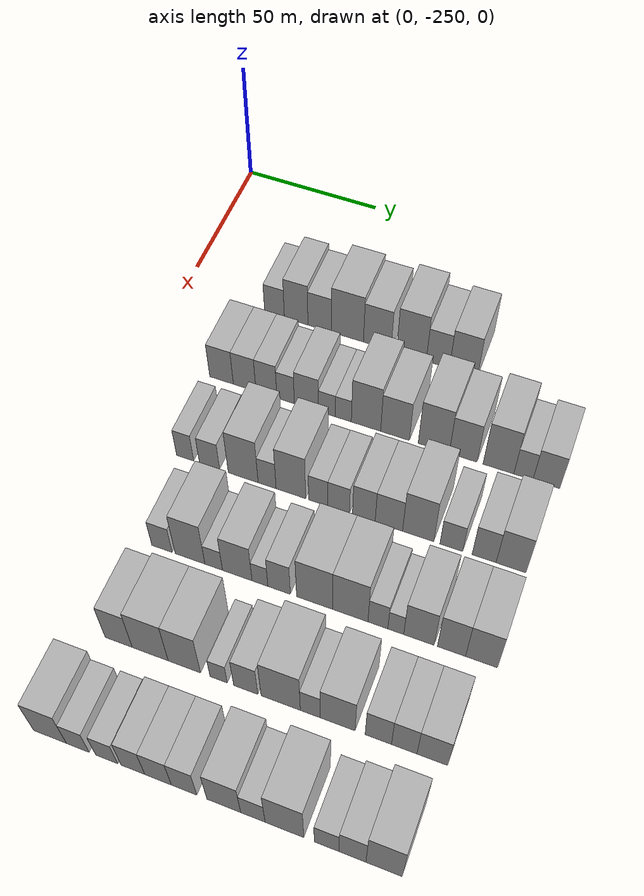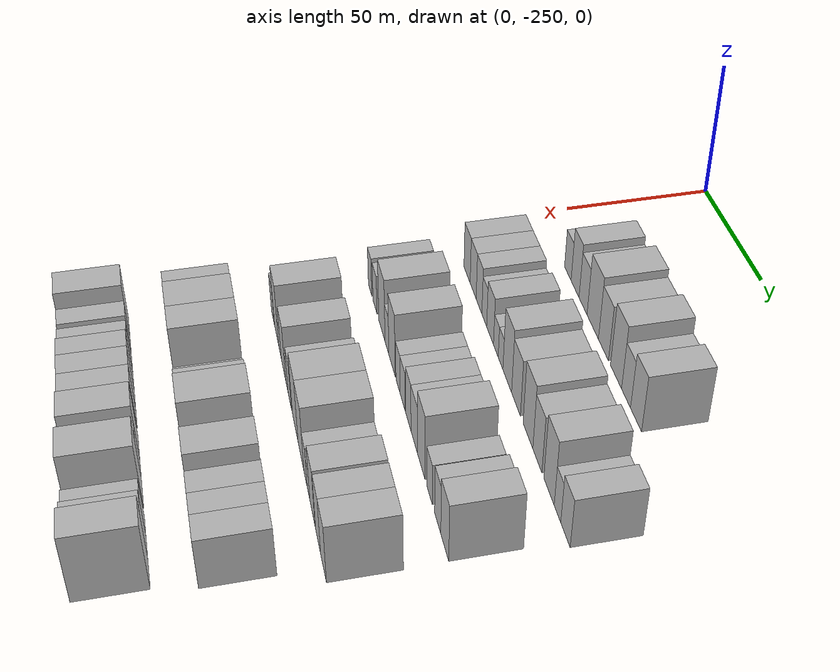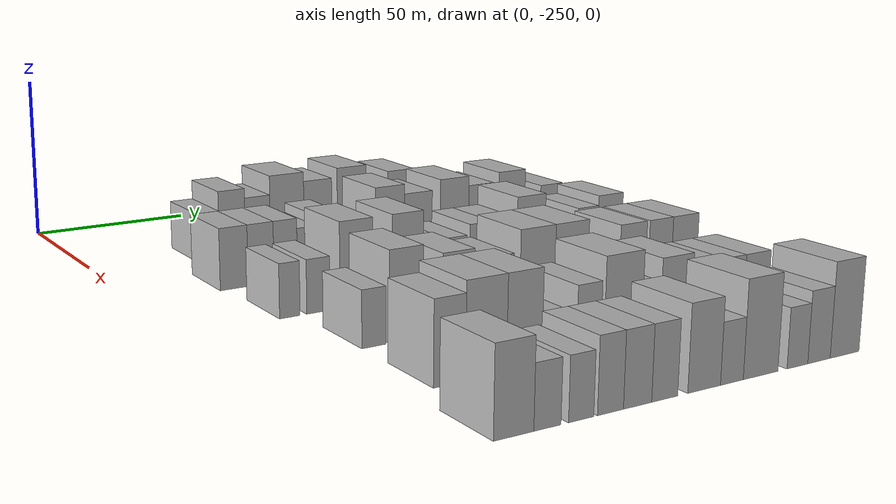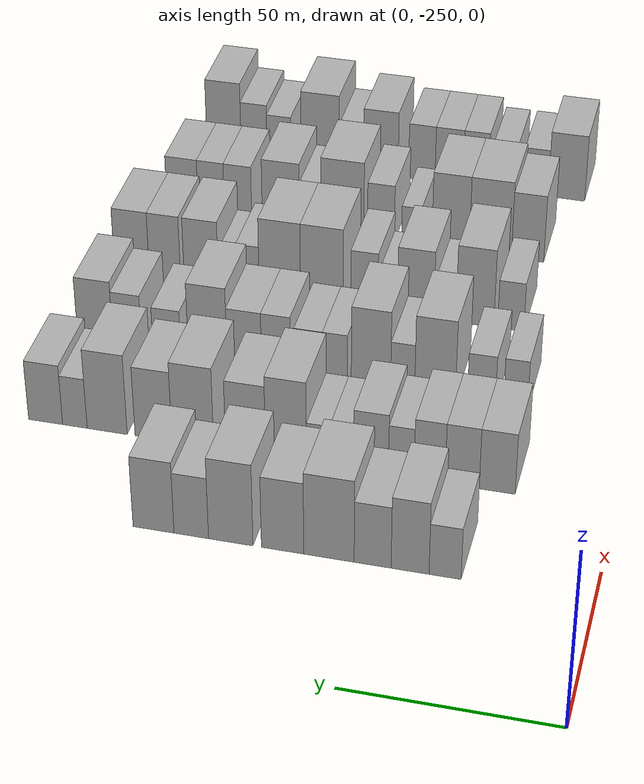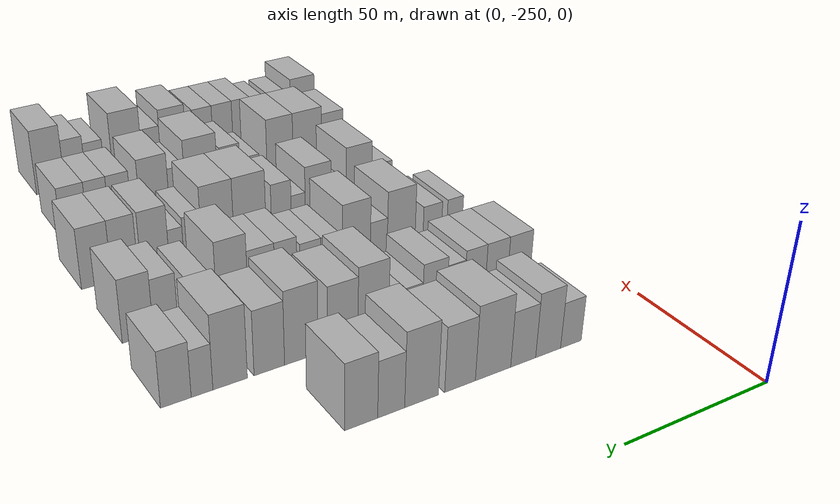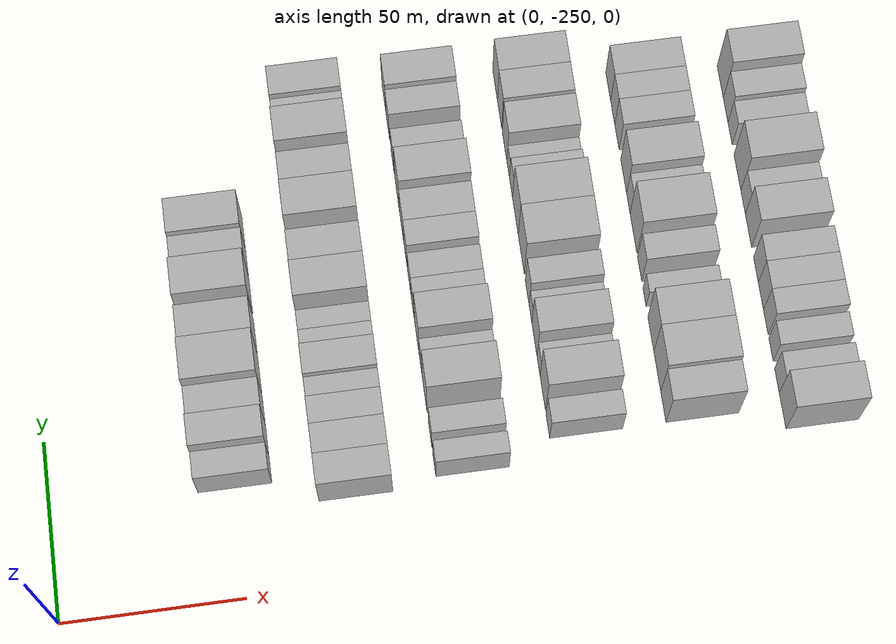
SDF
<sdf version="1.6">
 <world name="default">
  <model name="building_38">
   <static>1</static>
   <pose>50.0000 -215.8439 0 0.000000 0.000000 0.000000</pose>
   <link name="link">
    <pose>0 0 7.50 0 0 0</pose>
    <collision name="collision"><geometry><box><size>20.0000 7.4155 15.0000</size></box></geometry></collision>
    <visual name="visual">
     <cast_shadows>0</cast_shadows>
     <geometry><box><size>20.0000 7.4155 15.0000</size></box></geometry>
     <material>
      <script>
       <uri>model://HANNAS_wall/materials/scripts</uri>
       <uri>model://HANNAS_wall/materials/textures</uri>
       <name>vrc/HANNAS_wall</name>
      </script>
     </material>
    </visual>
   </link>
  </model>
  <model name="building_39">
   <static>1</static>
   <pose>50.0000 -207.7490 0 0.000000 0.000000 0.000000</pose>
   <link name="link">
    <pose>0 0 10.50 0 0 0</pose>
    <collision name="collision"><geometry><box><size>20.0000 8.7743 21.0000</size></box></geometry></collision>
    <visual name="visual">
     <cast_shadows>0</cast_shadows>
     <geometry><box><size>20.0000 8.7743 21.0000</size></box></geometry>
     <material>
      <script>
       <uri>model://HANNAS_wall/materials/scripts</uri>
       <uri>model://HANNAS_wall/materials/textures</uri>
       <name>vrc/HANNAS_wall</name>
      </script>
     </material>
    </visual>
   </link>
  </model>
  <model name="building_40">
   <static>1</static>
   <pose>50.0000 -199.0678 0 0.000000 0.000000 0.000000</pose>
   <link name="link">
    <pose>0 0 9.00 0 0 0</pose>
    <collision name="collision"><geometry><box><size>20.0000 8.5880 18.0000</size></box></geometry></collision>
    <visual name="visual">
     <cast_shadows>0</cast_shadows>
     <geometry><box><size>20.0000 8.5880 18.0000</size></box></geometry>
     <material>
      <script>
       <uri>model://HANNAS_wall/materials/scripts</uri>
       <uri>model://HANNAS_wall/materials/textures</uri>
       <name>vrc/HANNAS_wall</name>
      </script>
     </material>
    </visual>
   </link>
  </model>
  <model name="building_41">
   <static>1</static>
   <pose>50.0000 -188.8632 0 0.000000 0.000000 0.000000</pose>
   <link name="link">
    <pose>0 0 12.00 0 0 0</pose>
    <collision name="collision"><geometry><box><size>20.0000 11.8213 24.0000</size></box></geometry></collision>
    <visual name="visual">
     <cast_shadows>0</cast_shadows>
     <geometry><box><size>20.0000 11.8213 24.0000</size></box></geometry>
     <material>
      <script>
       <uri>model://HANNAS_wall/materials/scripts</uri>
       <uri>model://HANNAS_wall/materials/textures</uri>
       <name>vrc/HANNAS_wall</name>
      </script>
     </material>
    </visual>
   </link>
  </model>
  <model name="building_42">
   <static>1</static>
   <pose>50.0000 -177.9492 0 0.000000 0.000000 0.000000</pose>
   <link name="link">
    <pose>0 0 10.50 0 0 0</pose>
    <collision name="collision"><geometry><box><size>20.0000 10.0065 21.0000</size></box></geometry></collision>
    <visual name="visual">
     <cast_shadows>0</cast_shadows>
     <geometry><box><size>20.0000 10.0065 21.0000</size></box></geometry>
     <material>
      <script>
       <uri>model://HANNAS_wall/materials/scripts</uri>
       <uri>model://HANNAS_wall/materials/textures</uri>
       <name>vrc/HANNAS_wall</name>
      </script>
     </material>
    </visual>
   </link>
  </model>
  <model name="building_43">
   <static>1</static>
   <pose>50.0000 -165.6453 0 0.000000 0.000000 0.000000</pose>
   <link name="link">
    <pose>0 0 12.00 0 0 0</pose>
    <collision name="collision"><geometry><box><size>20.0000 10.6014 24.0000</size></box></geometry></collision>
    <visual name="visual">
     <cast_shadows>0</cast_shadows>
     <geometry><box><size>20.0000 10.6014 24.0000</size></box></geometry>
     <material>
      <script>
       <uri>model://HANNAS_wall/materials/scripts</uri>
       <uri>model://HANNAS_wall/materials/textures</uri>
       <name>vrc/HANNAS_wall</name>
      </script>
     </material>
    </visual>
   </link>
  </model>
  <model name="building_44">
   <static>1</static>
   <pose>50.0000 -156.2103 0 0.000000 0.000000 0.000000</pose>
   <link name="link">
    <pose>0 0 9.00 0 0 0</pose>
    <collision name="collision"><geometry><box><size>20.0000 8.2686 18.0000</size></box></geometry></collision>
    <visual name="visual">
     <cast_shadows>0</cast_shadows>
     <geometry><box><size>20.0000 8.2686 18.0000</size></box></geometry>
     <material>
      <script>
       <uri>model://HANNAS_wall/materials/scripts</uri>
       <uri>model://HANNAS_wall/materials/textures</uri>
       <name>vrc/HANNAS_wall</name>
      </script>
     </material>
    </visual>
   </link>
  </model>
  <model name="building_45">
   <static>1</static>
   <pose>50.0000 -147.1353 0 0.000000 0.000000 0.000000</pose>
   <link name="link">
    <pose>0 0 10.50 0 0 0</pose>
    <collision name="collision"><geometry><box><size>20.0000 9.8815 21.0000</size></box></geometry></collision>
    <visual name="visual">
     <cast_shadows>0</cast_shadows>
     <geometry><box><size>20.0000 9.8815 21.0000</size></box></geometry>
     <material>
      <script>
       <uri>model://HANNAS_wall/materials/scripts</uri>
       <uri>model://HANNAS_wall/materials/textures</uri>
       <name>vrc/HANNAS_wall</name>
      </script>
     </material>
    </visual>
   </link>
  </model>
  <model name="building_147">
   <static>1</static>
   <pose>82.0000 -221.9440 0 0.000000 0.000000 0.000000</pose>
   <link name="link">
    <pose>0 0 9.00 0 0 0</pose>
    <collision name="collision"><geometry><box><size>20.0000 8.6208 18.0000</size></box></geometry></collision>
    <visual name="visual">
     <cast_shadows>0</cast_shadows>
     <geometry><box><size>20.0000 8.6208 18.0000</size></box></geometry>
     <material>
      <script>
       <uri>model://HANNAS_wall/materials/scripts</uri>
       <uri>model://HANNAS_wall/materials/textures</uri>
       <name>vrc/HANNAS_wall</name>
      </script>
     </material>
    </visual>
   </link>
  </model>
  <model name="building_148">
   <static>1</static>
   <pose>82.0000 -213.5384 0 0.000000 0.000000 0.000000</pose>
   <link name="link">
    <pose>0 0 9.00 0 0 0</pose>
    <collision name="collision"><geometry><box><size>20.0000 8.1904 18.0000</size></box></geometry></collision>
    <visual name="visual">
     <cast_shadows>0</cast_shadows>
     <geometry><box><size>20.0000 8.1904 18.0000</size></box></geometry>
     <material>
      <script>
       <uri>model://HANNAS_wall/materials/scripts</uri>
       <uri>model://HANNAS_wall/materials/textures</uri>
       <name>vrc/HANNAS_wall</name>
      </script>
     </material>
    </visual>
   </link>
  </model>
  <model name="building_149">
   <static>1</static>
   <pose>82.0000 -205.6773 0 0.000000 0.000000 0.000000</pose>
   <link name="link">
    <pose>0 0 9.00 0 0 0</pose>
    <collision name="collision"><geometry><box><size>20.0000 7.5318 18.0000</size></box></geometry></collision>
    <visual name="visual">
     <cast_shadows>0</cast_shadows>
     <geometry><box><size>20.0000 7.5318 18.0000</size></box></geometry>
     <material>
      <script>
       <uri>model://HANNAS_wall/materials/scripts</uri>
       <uri>model://HANNAS_wall/materials/textures</uri>
       <name>vrc/HANNAS_wall</name>
      </script>
     </material>
    </visual>
   </link>
  </model>
  <model name="building_150">
   <static>1</static>
   <pose>82.0000 -198.7981 0 0.000000 0.000000 0.000000</pose>
   <link name="link">
    <pose>0 0 7.50 0 0 0</pose>
    <collision name="collision"><geometry><box><size>20.0000 6.2266 15.0000</size></box></geometry></collision>
    <visual name="visual">
     <cast_shadows>0</cast_shadows>
     <geometry><box><size>20.0000 6.2266 15.0000</size></box></geometry>
     <material>
      <script>
       <uri>model://HANNAS_wall/materials/scripts</uri>
       <uri>model://HANNAS_wall/materials/textures</uri>
       <name>vrc/HANNAS_wall</name>
      </script>
     </material>
    </visual>
   </link>
  </model>
  <model name="building_151">
   <static>1</static>
   <pose>82.0000 -191.4046 0 0.000000 0.000000 0.000000</pose>
   <link name="link">
    <pose>0 0 9.00 0 0 0</pose>
    <collision name="collision"><geometry><box><size>20.0000 8.5604 18.0000</size></box></geometry></collision>
    <visual name="visual">
     <cast_shadows>0</cast_shadows>
     <geometry><box><size>20.0000 8.5604 18.0000</size></box></geometry>
     <material>
      <script>
       <uri>model://HANNAS_wall/materials/scripts</uri>
       <uri>model://HANNAS_wall/materials/textures</uri>
       <name>vrc/HANNAS_wall</name>
      </script>
     </material>
    </visual>
   </link>
  </model>
  <model name="building_152">
   <static>1</static>
   <pose>82.0000 -184.1955 0 0.000000 0.000000 0.000000</pose>
   <link name="link">
    <pose>0 0 6.00 0 0 0</pose>
    <collision name="collision"><geometry><box><size>20.0000 5.8578 12.0000</size></box></geometry></collision>
    <visual name="visual">
     <cast_shadows>0</cast_shadows>
     <geometry><box><size>20.0000 5.8578 12.0000</size></box></geometry>
     <material>
      <script>
       <uri>model://HANNAS_wall/materials/scripts</uri>
       <uri>model://HANNAS_wall/materials/textures</uri>
       <name>vrc/HANNAS_wall</name>
      </script>
     </material>
    </visual>
   </link>
  </model>
  <model name="building_153">
   <static>1</static>
   <pose>82.0000 -178.4407 0 0.000000 0.000000 0.000000</pose>
   <link name="link">
    <pose>0 0 6.00 0 0 0</pose>
    <collision name="collision"><geometry><box><size>20.0000 5.6518 12.0000</size></box></geometry></collision>
    <visual name="visual">
     <cast_shadows>0</cast_shadows>
     <geometry><box><size>20.0000 5.6518 12.0000</size></box></geometry>
     <material>
      <script>
       <uri>model://HANNAS_wall/materials/scripts</uri>
       <uri>model://HANNAS_wall/materials/textures</uri>
       <name>vrc/HANNAS_wall</name>
      </script>
     </material>
    </visual>
   </link>
  </model>
  <model name="building_154">
   <static>1</static>
   <pose>82.0000 -170.5299 0 0.000000 0.000000 0.000000</pose>
   <link name="link">
    <pose>0 0 12.00 0 0 0</pose>
    <collision name="collision"><geometry><box><size>20.0000 10.1696 24.0000</size></box></geometry></collision>
    <visual name="visual">
     <cast_shadows>0</cast_shadows>
     <geometry><box><size>20.0000 10.1696 24.0000</size></box></geometry>
     <material>
      <script>
       <uri>model://HANNAS_wall/materials/scripts</uri>
       <uri>model://HANNAS_wall/materials/textures</uri>
       <name>vrc/HANNAS_wall</name>
      </script>
     </material>
    </visual>
   </link>
  </model>
  <model name="building_155">
   <static>1</static>
   <pose>82.0000 -160.4915 0 0.000000 0.000000 0.000000</pose>
   <link name="link">
    <pose>0 0 10.50 0 0 0</pose>
    <collision name="collision"><geometry><box><size>20.0000 9.9072 21.0000</size></box></geometry></collision>
    <visual name="visual">
     <cast_shadows>0</cast_shadows>
     <geometry><box><size>20.0000 9.9072 21.0000</size></box></geometry>
     <material>
      <script>
       <uri>model://HANNAS_wall/materials/scripts</uri>
       <uri>model://HANNAS_wall/materials/textures</uri>
       <name>vrc/HANNAS_wall</name>
      </script>
     </material>
    </visual>
   </link>
  </model>
  <model name="building_156">
   <static>1</static>
   <pose>82.0000 -147.2868 0 0.000000 0.000000 0.000000</pose>
   <link name="link">
    <pose>0 0 12.00 0 0 0</pose>
    <collision name="collision"><geometry><box><size>20.0000 10.5022 24.0000</size></box></geometry></collision>
    <visual name="visual">
     <cast_shadows>0</cast_shadows>
     <geometry><box><size>20.0000 10.5022 24.0000</size></box></geometry>
     <material>
      <script>
       <uri>model://HANNAS_wall/materials/scripts</uri>
       <uri>model://HANNAS_wall/materials/textures</uri>
       <name>vrc/HANNAS_wall</name>
      </script>
     </material>
    </visual>
   </link>
  </model>
  <model name="building_157">
   <static>1</static>
   <pose>82.0000 -137.3628 0 0.000000 0.000000 0.000000</pose>
   <link name="link">
    <pose>0 0 10.50 0 0 0</pose>
    <collision name="collision"><geometry><box><size>20.0000 9.3458 21.0000</size></box></geometry></collision>
    <visual name="visual">
     <cast_shadows>0</cast_shadows>
     <geometry><box><size>20.0000 9.3458 21.0000</size></box></geometry>
     <material>
      <script>
       <uri>model://HANNAS_wall/materials/scripts</uri>
       <uri>model://HANNAS_wall/materials/textures</uri>
       <name>vrc/HANNAS_wall</name>
      </script>
     </material>
    </visual>
   </link>
  </model>
  <model name="building_158">
   <static>1</static>
   <pose>82.0000 -125.5818 0 0.000000 0.000000 0.000000</pose>
   <link name="link">
    <pose>0 0 12.00 0 0 0</pose>
    <collision name="collision"><geometry><box><size>20.0000 10.2162 24.0000</size></box></geometry></collision>
    <visual name="visual">
     <cast_shadows>0</cast_shadows>
     <geometry><box><size>20.0000 10.2162 24.0000</size></box></geometry>
     <material>
      <script>
       <uri>model://HANNAS_wall/materials/scripts</uri>
       <uri>model://HANNAS_wall/materials/textures</uri>
       <name>vrc/HANNAS_wall</name>
      </script>
     </material>
    </visual>
   </link>
  </model>
  <model name="building_159">
   <static>1</static>
   <pose>82.0000 -117.3298 0 0.000000 0.000000 0.000000</pose>
   <link name="link">
    <pose>0 0 7.50 0 0 0</pose>
    <collision name="collision"><geometry><box><size>20.0000 6.2876 15.0000</size></box></geometry></collision>
    <visual name="visual">
     <cast_shadows>0</cast_shadows>
     <geometry><box><size>20.0000 6.2876 15.0000</size></box></geometry>
     <material>
      <script>
       <uri>model://HANNAS_wall/materials/scripts</uri>
       <uri>model://HANNAS_wall/materials/textures</uri>
       <name>vrc/HANNAS_wall</name>
      </script>
     </material>
    </visual>
   </link>
  </model>
  <model name="building_160">
   <static>1</static>
   <pose>82.0000 -109.8099 0 0.000000 0.000000 0.000000</pose>
   <link name="link">
    <pose>0 0 9.00 0 0 0</pose>
    <collision name="collision"><geometry><box><size>20.0000 8.7523 18.0000</size></box></geometry></collision>
    <visual name="visual">
     <cast_shadows>0</cast_shadows>
     <geometry><box><size>20.0000 8.7523 18.0000</size></box></geometry>
     <material>
      <script>
       <uri>model://HANNAS_wall/materials/scripts</uri>
       <uri>model://HANNAS_wall/materials/textures</uri>
       <name>vrc/HANNAS_wall</name>
      </script>
     </material>
    </visual>
   </link>
  </model>
  <model name="building_264">
   <static>1</static>
   <pose>114.0000 -220.6672 0 0.000000 0.000000 0.000000</pose>
   <link name="link">
    <pose>0 0 7.50 0 0 0</pose>
    <collision name="collision"><geometry><box><size>20.0000 6.0372 15.0000</size></box></geometry></collision>
    <visual name="visual">
     <cast_shadows>0</cast_shadows>
     <geometry><box><size>20.0000 6.0372 15.0000</size></box></geometry>
     <material>
      <script>
       <uri>model://HANNAS_wall/materials/scripts</uri>
       <uri>model://HANNAS_wall/materials/textures</uri>
       <name>vrc/HANNAS_wall</name>
      </script>
     </material>
    </visual>
   </link>
  </model>
  <model name="building_265">
   <static>1</static>
   <pose>114.0000 -212.1219 0 0.000000 0.000000 0.000000</pose>
   <link name="link">
    <pose>0 0 7.50 0 0 0</pose>
    <collision name="collision"><geometry><box><size>20.0000 7.0533 15.0000</size></box></geometry></collision>
    <visual name="visual">
     <cast_shadows>0</cast_shadows>
     <geometry><box><size>20.0000 7.0533 15.0000</size></box></geometry>
     <material>
      <script>
       <uri>model://HANNAS_wall/materials/scripts</uri>
       <uri>model://HANNAS_wall/materials/textures</uri>
       <name>vrc/HANNAS_wall</name>
      </script>
     </material>
    </visual>
   </link>
  </model>
  <model name="building_266">
   <static>1</static>
   <pose>114.0000 -200.4360 0 0.000000 0.000000 0.000000</pose>
   <link name="link">
    <pose>0 0 12.00 0 0 0</pose>
    <collision name="collision"><geometry><box><size>20.0000 10.3186 24.0000</size></box></geometry></collision>
    <visual name="visual">
     <cast_shadows>0</cast_shadows>
     <geometry><box><size>20.0000 10.3186 24.0000</size></box></geometry>
     <material>
      <script>
       <uri>model://HANNAS_wall/materials/scripts</uri>
       <uri>model://HANNAS_wall/materials/textures</uri>
       <name>vrc/HANNAS_wall</name>
      </script>
     </material>
    </visual>
   </link>
  </model>
  <model name="building_267">
   <static>1</static>
   <pose>114.0000 -192.2118 0 0.000000 0.000000 0.000000</pose>
   <link name="link">
    <pose>0 0 7.50 0 0 0</pose>
    <collision name="collision"><geometry><box><size>20.0000 6.1298 15.0000</size></box></geometry></collision>
    <visual name="visual">
     <cast_shadows>0</cast_shadows>
     <geometry><box><size>20.0000 6.1298 15.0000</size></box></geometry>
     <material>
      <script>
       <uri>model://HANNAS_wall/materials/scripts</uri>
       <uri>model://HANNAS_wall/materials/textures</uri>
       <name>vrc/HANNAS_wall</name>
      </script>
     </material>
    </visual>
   </link>
  </model>
  <model name="building_268">
   <static>1</static>
   <pose>114.0000 -184.1277 0 0.000000 0.000000 0.000000</pose>
   <link name="link">
    <pose>0 0 12.00 0 0 0</pose>
    <collision name="collision"><geometry><box><size>20.0000 10.0385 24.0000</size></box></geometry></collision>
    <visual name="visual">
     <cast_shadows>0</cast_shadows>
     <geometry><box><size>20.0000 10.0385 24.0000</size></box></geometry>
     <material>
      <script>
       <uri>model://HANNAS_wall/materials/scripts</uri>
       <uri>model://HANNAS_wall/materials/textures</uri>
       <name>vrc/HANNAS_wall</name>
      </script>
     </material>
    </visual>
   </link>
  </model>
  <model name="building_269">
   <static>1</static>
   <pose>114.0000 -174.9133 0 0.000000 0.000000 0.000000</pose>
   <link name="link">
    <pose>0 0 7.50 0 0 0</pose>
    <collision name="collision"><geometry><box><size>20.0000 6.3903 15.0000</size></box></geometry></collision>
    <visual name="visual">
     <cast_shadows>0</cast_shadows>
     <geometry><box><size>20.0000 6.3903 15.0000</size></box></geometry>
     <material>
      <script>
       <uri>model://HANNAS_wall/materials/scripts</uri>
       <uri>model://HANNAS_wall/materials/textures</uri>
       <name>vrc/HANNAS_wall</name>
      </script>
     </material>
    </visual>
   </link>
  </model>
  <model name="building_270">
   <static>1</static>
   <pose>114.0000 -168.0857 0 0.000000 0.000000 0.000000</pose>
   <link name="link">
    <pose>0 0 7.50 0 0 0</pose>
    <collision name="collision"><geometry><box><size>20.0000 7.2649 15.0000</size></box></geometry></collision>
    <visual name="visual">
     <cast_shadows>0</cast_shadows>
     <geometry><box><size>20.0000 7.2649 15.0000</size></box></geometry>
     <material>
      <script>
       <uri>model://HANNAS_wall/materials/scripts</uri>
       <uri>model://HANNAS_wall/materials/textures</uri>
       <name>vrc/HANNAS_wall</name>
      </script>
     </material>
    </visual>
   </link>
  </model>
  <model name="building_271">
   <static>1</static>
   <pose>114.0000 -159.7095 0 0.000000 0.000000 0.000000</pose>
   <link name="link">
    <pose>0 0 9.00 0 0 0</pose>
    <collision name="collision"><geometry><box><size>20.0000 7.4874 18.0000</size></box></geometry></collision>
    <visual name="visual">
     <cast_shadows>0</cast_shadows>
     <geometry><box><size>20.0000 7.4874 18.0000</size></box></geometry>
     <material>
      <script>
       <uri>model://HANNAS_wall/materials/scripts</uri>
       <uri>model://HANNAS_wall/materials/textures</uri>
       <name>vrc/HANNAS_wall</name>
      </script>
     </material>
    </visual>
   </link>
  </model>
  <model name="building_272">
   <static>1</static>
   <pose>114.0000 -151.4715 0 0.000000 0.000000 0.000000</pose>
   <link name="link">
    <pose>0 0 9.00 0 0 0</pose>
    <collision name="collision"><geometry><box><size>20.0000 8.9886 18.0000</size></box></geometry></collision>
    <visual name="visual">
     <cast_shadows>0</cast_shadows>
     <geometry><box><size>20.0000 8.9886 18.0000</size></box></geometry>
     <material>
      <script>
       <uri>model://HANNAS_wall/materials/scripts</uri>
       <uri>model://HANNAS_wall/materials/textures</uri>
       <name>vrc/HANNAS_wall</name>
      </script>
     </material>
    </visual>
   </link>
  </model>
  <model name="building_273">
   <static>1</static>
   <pose>114.0000 -141.9210 0 0.000000 0.000000 0.000000</pose>
   <link name="link">
    <pose>0 0 12.00 0 0 0</pose>
    <collision name="collision"><geometry><box><size>20.0000 10.1125 24.0000</size></box></geometry></collision>
    <visual name="visual">
     <cast_shadows>0</cast_shadows>
     <geometry><box><size>20.0000 10.1125 24.0000</size></box></geometry>
     <material>
      <script>
       <uri>model://HANNAS_wall/materials/scripts</uri>
       <uri>model://HANNAS_wall/materials/textures</uri>
       <name>vrc/HANNAS_wall</name>
      </script>
     </material>
    </visual>
   </link>
  </model>
  <model name="building_274">
   <static>1</static>
   <pose>114.0000 -131.2082 0 0.000000 0.000000 0.000000</pose>
   <link name="link">
    <pose>0 0 7.50 0 0 0</pose>
    <collision name="collision"><geometry><box><size>20.0000 7.3132 15.0000</size></box></geometry></collision>
    <visual name="visual">
     <cast_shadows>0</cast_shadows>
     <geometry><box><size>20.0000 7.3132 15.0000</size></box></geometry>
     <material>
      <script>
       <uri>model://HANNAS_wall/materials/scripts</uri>
       <uri>model://HANNAS_wall/materials/textures</uri>
       <name>vrc/HANNAS_wall</name>
      </script>
     </material>
    </visual>
   </link>
  </model>
  <model name="building_275">
   <static>1</static>
   <pose>114.0000 -120.7479 0 0.000000 0.000000 0.000000</pose>
   <link name="link">
    <pose>0 0 9.00 0 0 0</pose>
    <collision name="collision"><geometry><box><size>20.0000 7.6074 18.0000</size></box></geometry></collision>
    <visual name="visual">
     <cast_shadows>0</cast_shadows>
     <geometry><box><size>20.0000 7.6074 18.0000</size></box></geometry>
     <material>
      <script>
       <uri>model://HANNAS_wall/materials/scripts</uri>
       <uri>model://HANNAS_wall/materials/textures</uri>
       <name>vrc/HANNAS_wall</name>
      </script>
     </material>
    </visual>
   </link>
  </model>
  <model name="building_276">
   <static>1</static>
   <pose>114.0000 -112.2390 0 0.000000 0.000000 0.000000</pose>
   <link name="link">
    <pose>0 0 10.50 0 0 0</pose>
    <collision name="collision"><geometry><box><size>20.0000 9.4103 21.0000</size></box></geometry></collision>
    <visual name="visual">
     <cast_shadows>0</cast_shadows>
     <geometry><box><size>20.0000 9.4103 21.0000</size></box></geometry>
     <material>
      <script>
       <uri>model://HANNAS_wall/materials/scripts</uri>
       <uri>model://HANNAS_wall/materials/textures</uri>
       <name>vrc/HANNAS_wall</name>
      </script>
     </material>
    </visual>
   </link>
  </model>
  <model name="building_381">
   <static>1</static>
   <pose>146.0000 -213.7930 0 0.000000 0.000000 0.000000</pose>
   <link name="link">
    <pose>0 0 7.50 0 0 0</pose>
    <collision name="collision"><geometry><box><size>20.0000 6.8597 15.0000</size></box></geometry></collision>
    <visual name="visual">
     <cast_shadows>0</cast_shadows>
     <geometry><box><size>20.0000 6.8597 15.0000</size></box></geometry>
     <material>
      <script>
       <uri>model://HANNAS_wall/materials/scripts</uri>
       <uri>model://HANNAS_wall/materials/textures</uri>
       <name>vrc/HANNAS_wall</name>
      </script>
     </material>
    </visual>
   </link>
  </model>
  <model name="building_382">
   <static>1</static>
   <pose>146.0000 -204.3847 0 0.000000 0.000000 0.000000</pose>
   <link name="link">
    <pose>0 0 12.00 0 0 0</pose>
    <collision name="collision"><geometry><box><size>20.0000 9.9569 24.0000</size></box></geometry></collision>
    <visual name="visual">
     <cast_shadows>0</cast_shadows>
     <geometry><box><size>20.0000 9.9569 24.0000</size></box></geometry>
     <material>
      <script>
       <uri>model://HANNAS_wall/materials/scripts</uri>
       <uri>model://HANNAS_wall/materials/textures</uri>
       <name>vrc/HANNAS_wall</name>
      </script>
     </material>
    </visual>
   </link>
  </model>
  <model name="building_383">
   <static>1</static>
   <pose>146.0000 -196.5038 0 0.000000 0.000000 0.000000</pose>
   <link name="link">
    <pose>0 0 6.00 0 0 0</pose>
    <collision name="collision"><geometry><box><size>20.0000 5.8049 12.0000</size></box></geometry></collision>
    <visual name="visual">
     <cast_shadows>0</cast_shadows>
     <geometry><box><size>20.0000 5.8049 12.0000</size></box></geometry>
     <material>
      <script>
       <uri>model://HANNAS_wall/materials/scripts</uri>
       <uri>model://HANNAS_wall/materials/textures</uri>
       <name>vrc/HANNAS_wall</name>
      </script>
     </material>
    </visual>
   </link>
  </model>
  <model name="building_384">
   <static>1</static>
   <pose>146.0000 -188.7603 0 0.000000 0.000000 0.000000</pose>
   <link name="link">
    <pose>0 0 10.50 0 0 0</pose>
    <collision name="collision"><geometry><box><size>20.0000 9.6820 21.0000</size></box></geometry></collision>
    <visual name="visual">
     <cast_shadows>0</cast_shadows>
     <geometry><box><size>20.0000 9.6820 21.0000</size></box></geometry>
     <material>
      <script>
       <uri>model://HANNAS_wall/materials/scripts</uri>
       <uri>model://HANNAS_wall/materials/textures</uri>
       <name>vrc/HANNAS_wall</name>
      </script>
     </material>
    </visual>
   </link>
  </model>
  <model name="building_385">
   <static>1</static>
   <pose>146.0000 -181.3342 0 0.000000 0.000000 0.000000</pose>
   <link name="link">
    <pose>0 0 6.00 0 0 0</pose>
    <collision name="collision"><geometry><box><size>20.0000 5.1702 12.0000</size></box></geometry></collision>
    <visual name="visual">
     <cast_shadows>0</cast_shadows>
     <geometry><box><size>20.0000 5.1702 12.0000</size></box></geometry>
     <material>
      <script>
       <uri>model://HANNAS_wall/materials/scripts</uri>
       <uri>model://HANNAS_wall/materials/textures</uri>
       <name>vrc/HANNAS_wall</name>
      </script>
     </material>
    </visual>
   </link>
  </model>
  <model name="building_386">
   <static>1</static>
   <pose>146.0000 -175.1169 0 0.000000 0.000000 0.000000</pose>
   <link name="link">
    <pose>0 0 9.00 0 0 0</pose>
    <collision name="collision"><geometry><box><size>20.0000 7.2644 18.0000</size></box></geometry></collision>
    <visual name="visual">
     <cast_shadows>0</cast_shadows>
     <geometry><box><size>20.0000 7.2644 18.0000</size></box></geometry>
     <material>
      <script>
       <uri>model://HANNAS_wall/materials/scripts</uri>
       <uri>model://HANNAS_wall/materials/textures</uri>
       <name>vrc/HANNAS_wall</name>
      </script>
     </material>
    </visual>
   </link>
  </model>
  <model name="building_387">
   <static>1</static>
   <pose>146.0000 -163.7546 0 0.000000 0.000000 0.000000</pose>
   <link name="link">
    <pose>0 0 12.00 0 0 0</pose>
    <collision name="collision"><geometry><box><size>20.0000 11.4601 24.0000</size></box></geometry></collision>
    <visual name="visual">
     <cast_shadows>0</cast_shadows>
     <geometry><box><size>20.0000 11.4601 24.0000</size></box></geometry>
     <material>
      <script>
       <uri>model://HANNAS_wall/materials/scripts</uri>
       <uri>model://HANNAS_wall/materials/textures</uri>
       <name>vrc/HANNAS_wall</name>
      </script>
     </material>
    </visual>
   </link>
  </model>
  <model name="building_388">
   <static>1</static>
   <pose>146.0000 -152.4267 0 0.000000 0.000000 0.000000</pose>
   <link name="link">
    <pose>0 0 12.00 0 0 0</pose>
    <collision name="collision"><geometry><box><size>20.0000 11.1958 24.0000</size></box></geometry></collision>
    <visual name="visual">
     <cast_shadows>0</cast_shadows>
     <geometry><box><size>20.0000 11.1958 24.0000</size></box></geometry>
     <material>
      <script>
       <uri>model://HANNAS_wall/materials/scripts</uri>
       <uri>model://HANNAS_wall/materials/textures</uri>
       <name>vrc/HANNAS_wall</name>
      </script>
     </material>
    </visual>
   </link>
  </model>
  <model name="building_389">
   <static>1</static>
   <pose>146.0000 -143.7318 0 0.000000 0.000000 0.000000</pose>
   <link name="link">
    <pose>0 0 7.50 0 0 0</pose>
    <collision name="collision"><geometry><box><size>20.0000 6.1940 15.0000</size></box></geometry></collision>
    <visual name="visual">
     <cast_shadows>0</cast_shadows>
     <geometry><box><size>20.0000 6.1940 15.0000</size></box></geometry>
     <material>
      <script>
       <uri>model://HANNAS_wall/materials/scripts</uri>
       <uri>model://HANNAS_wall/materials/textures</uri>
       <name>vrc/HANNAS_wall</name>
      </script>
     </material>
    </visual>
   </link>
  </model>
  <model name="building_390">
   <static>1</static>
   <pose>146.0000 -138.1753 0 0.000000 0.000000 0.000000</pose>
   <link name="link">
    <pose>0 0 6.00 0 0 0</pose>
    <collision name="collision"><geometry><box><size>20.0000 4.9189 12.0000</size></box></geometry></collision>
    <visual name="visual">
     <cast_shadows>0</cast_shadows>
     <geometry><box><size>20.0000 4.9189 12.0000</size></box></geometry>
     <material>
      <script>
       <uri>model://HANNAS_wall/materials/scripts</uri>
       <uri>model://HANNAS_wall/materials/textures</uri>
       <name>vrc/HANNAS_wall</name>
      </script>
     </material>
    </visual>
   </link>
  </model>
  <model name="building_391">
   <static>1</static>
   <pose>146.0000 -131.0293 0 0.000000 0.000000 0.000000</pose>
   <link name="link">
    <pose>0 0 10.50 0 0 0</pose>
    <collision name="collision"><geometry><box><size>20.0000 9.3731 21.0000</size></box></geometry></collision>
    <visual name="visual">
     <cast_shadows>0</cast_shadows>
     <geometry><box><size>20.0000 9.3731 21.0000</size></box></geometry>
     <material>
      <script>
       <uri>model://HANNAS_wall/materials/scripts</uri>
       <uri>model://HANNAS_wall/materials/textures</uri>
       <name>vrc/HANNAS_wall</name>
      </script>
     </material>
    </visual>
   </link>
  </model>
  <model name="building_392">
   <static>1</static>
   <pose>146.0000 -121.0524 0 0.000000 0.000000 0.000000</pose>
   <link name="link">
    <pose>0 0 10.50 0 0 0</pose>
    <collision name="collision"><geometry><box><size>20.0000 8.5807 21.0000</size></box></geometry></collision>
    <visual name="visual">
     <cast_shadows>0</cast_shadows>
     <geometry><box><size>20.0000 8.5807 21.0000</size></box></geometry>
     <material>
      <script>
       <uri>model://HANNAS_wall/materials/scripts</uri>
       <uri>model://HANNAS_wall/materials/textures</uri>
       <name>vrc/HANNAS_wall</name>
      </script>
     </material>
    </visual>
   </link>
  </model>
  <model name="building_393">
   <static>1</static>
   <pose>146.0000 -111.9539 0 0.000000 0.000000 0.000000</pose>
   <link name="link">
    <pose>0 0 10.50 0 0 0</pose>
    <collision name="collision"><geometry><box><size>20.0000 9.6162 21.0000</size></box></geometry></collision>
    <visual name="visual">
     <cast_shadows>0</cast_shadows>
     <geometry><box><size>20.0000 9.6162 21.0000</size></box></geometry>
     <material>
      <script>
       <uri>model://HANNAS_wall/materials/scripts</uri>
       <uri>model://HANNAS_wall/materials/textures</uri>
       <name>vrc/HANNAS_wall</name>
      </script>
     </material>
    </visual>
   </link>
  </model>
  <model name="building_504">
   <static>1</static>
   <pose>178.0000 -212.6607 0 0.000000 0.000000 0.000000</pose>
   <link name="link">
    <pose>0 0 10.50 0 0 0</pose>
    <collision name="collision"><geometry><box><size>20.0000 8.7768 21.0000</size></box></geometry></collision>
    <visual name="visual">
     <cast_shadows>0</cast_shadows>
     <geometry><box><size>20.0000 8.7768 21.0000</size></box></geometry>
     <material>
      <script>
       <uri>model://HANNAS_wall/materials/scripts</uri>
       <uri>model://HANNAS_wall/materials/textures</uri>
       <name>vrc/HANNAS_wall</name>
      </script>
     </material>
    </visual>
   </link>
  </model>
  <model name="building_505">
   <static>1</static>
   <pose>178.0000 -202.5109 0 0.000000 0.000000 0.000000</pose>
   <link name="link">
    <pose>0 0 12.00 0 0 0</pose>
    <collision name="collision"><geometry><box><size>20.0000 11.5227 24.0000</size></box></geometry></collision>
    <visual name="visual">
     <cast_shadows>0</cast_shadows>
     <geometry><box><size>20.0000 11.5227 24.0000</size></box></geometry>
     <material>
      <script>
       <uri>model://HANNAS_wall/materials/scripts</uri>
       <uri>model://HANNAS_wall/materials/textures</uri>
       <name>vrc/HANNAS_wall</name>
      </script>
     </material>
    </visual>
   </link>
  </model>
  <model name="building_506">
   <static>1</static>
   <pose>178.0000 -191.6226 0 0.000000 0.000000 0.000000</pose>
   <link name="link">
    <pose>0 0 12.00 0 0 0</pose>
    <collision name="collision"><geometry><box><size>20.0000 10.2541 24.0000</size></box></geometry></collision>
    <visual name="visual">
     <cast_shadows>0</cast_shadows>
     <geometry><box><size>20.0000 10.2541 24.0000</size></box></geometry>
     <material>
      <script>
       <uri>model://HANNAS_wall/materials/scripts</uri>
       <uri>model://HANNAS_wall/materials/textures</uri>
       <name>vrc/HANNAS_wall</name>
      </script>
     </material>
    </visual>
   </link>
  </model>
  <model name="building_507">
   <static>1</static>
   <pose>178.0000 -180.8087 0 0.000000 0.000000 0.000000</pose>
   <link name="link">
    <pose>0 0 6.00 0 0 0</pose>
    <collision name="collision"><geometry><box><size>20.0000 5.3737 12.0000</size></box></geometry></collision>
    <visual name="visual">
     <cast_shadows>0</cast_shadows>
     <geometry><box><size>20.0000 5.3737 12.0000</size></box></geometry>
     <material>
      <script>
       <uri>model://HANNAS_wall/materials/scripts</uri>
       <uri>model://HANNAS_wall/materials/textures</uri>
       <name>vrc/HANNAS_wall</name>
      </script>
     </material>
    </visual>
   </link>
  </model>
  <model name="building_508">
   <static>1</static>
   <pose>178.0000 -172.3851 0 0.000000 0.000000 0.000000</pose>
   <link name="link">
    <pose>0 0 9.00 0 0 0</pose>
    <collision name="collision"><geometry><box><size>20.0000 7.4735 18.0000</size></box></geometry></collision>
    <visual name="visual">
     <cast_shadows>0</cast_shadows>
     <geometry><box><size>20.0000 7.4735 18.0000</size></box></geometry>
     <material>
      <script>
       <uri>model://HANNAS_wall/materials/scripts</uri>
       <uri>model://HANNAS_wall/materials/textures</uri>
       <name>vrc/HANNAS_wall</name>
      </script>
     </material>
    </visual>
   </link>
  </model>
  <model name="building_509">
   <static>1</static>
   <pose>178.0000 -161.6490 0 0.000000 0.000000 0.000000</pose>
   <link name="link">
    <pose>0 0 12.00 0 0 0</pose>
    <collision name="collision"><geometry><box><size>20.0000 11.9986 24.0000</size></box></geometry></collision>
    <visual name="visual">
     <cast_shadows>0</cast_shadows>
     <geometry><box><size>20.0000 11.9986 24.0000</size></box></geometry>
     <material>
      <script>
       <uri>model://HANNAS_wall/materials/scripts</uri>
       <uri>model://HANNAS_wall/materials/textures</uri>
       <name>vrc/HANNAS_wall</name>
      </script>
     </material>
    </visual>
   </link>
  </model>
  <model name="building_510">
   <static>1</static>
   <pose>178.0000 -152.6429 0 0.000000 0.000000 0.000000</pose>
   <link name="link">
    <pose>0 0 7.50 0 0 0</pose>
    <collision name="collision"><geometry><box><size>20.0000 6.0135 15.0000</size></box></geometry></collision>
    <visual name="visual">
     <cast_shadows>0</cast_shadows>
     <geometry><box><size>20.0000 6.0135 15.0000</size></box></geometry>
     <material>
      <script>
       <uri>model://HANNAS_wall/materials/scripts</uri>
       <uri>model://HANNAS_wall/materials/textures</uri>
       <name>vrc/HANNAS_wall</name>
      </script>
     </material>
    </visual>
   </link>
  </model>
  <model name="building_511">
   <static>1</static>
   <pose>178.0000 -144.4057 0 0.000000 0.000000 0.000000</pose>
   <link name="link">
    <pose>0 0 10.50 0 0 0</pose>
    <collision name="collision"><geometry><box><size>20.0000 10.4610 21.0000</size></box></geometry></collision>
    <visual name="visual">
     <cast_shadows>0</cast_shadows>
     <geometry><box><size>20.0000 10.4610 21.0000</size></box></geometry>
     <material>
      <script>
       <uri>model://HANNAS_wall/materials/scripts</uri>
       <uri>model://HANNAS_wall/materials/textures</uri>
       <name>vrc/HANNAS_wall</name>
      </script>
     </material>
    </visual>
   </link>
  </model>
  <model name="building_512">
   <static>1</static>
   <pose>178.0000 -132.2918 0 0.000000 0.000000 0.000000</pose>
   <link name="link">
    <pose>0 0 9.00 0 0 0</pose>
    <collision name="collision"><geometry><box><size>20.0000 7.7669 18.0000</size></box></geometry></collision>
    <visual name="visual">
     <cast_shadows>0</cast_shadows>
     <geometry><box><size>20.0000 7.7669 18.0000</size></box></geometry>
     <material>
      <script>
       <uri>model://HANNAS_wall/materials/scripts</uri>
       <uri>model://HANNAS_wall/materials/textures</uri>
       <name>vrc/HANNAS_wall</name>
      </script>
     </material>
    </visual>
   </link>
  </model>
  <model name="building_513">
   <static>1</static>
   <pose>178.0000 -124.6726 0 0.000000 0.000000 0.000000</pose>
   <link name="link">
    <pose>0 0 9.00 0 0 0</pose>
    <collision name="collision"><geometry><box><size>20.0000 7.4715 18.0000</size></box></geometry></collision>
    <visual name="visual">
     <cast_shadows>0</cast_shadows>
     <geometry><box><size>20.0000 7.4715 18.0000</size></box></geometry>
     <material>
      <script>
       <uri>model://HANNAS_wall/materials/scripts</uri>
       <uri>model://HANNAS_wall/materials/textures</uri>
       <name>vrc/HANNAS_wall</name>
      </script>
     </material>
    </visual>
   </link>
  </model>
  <model name="building_514">
   <static>1</static>
   <pose>178.0000 -116.4725 0 0.000000 0.000000 0.000000</pose>
   <link name="link">
    <pose>0 0 9.00 0 0 0</pose>
    <collision name="collision"><geometry><box><size>20.0000 8.9286 18.0000</size></box></geometry></collision>
    <visual name="visual">
     <cast_shadows>0</cast_shadows>
     <geometry><box><size>20.0000 8.9286 18.0000</size></box></geometry>
     <material>
      <script>
       <uri>model://HANNAS_wall/materials/scripts</uri>
       <uri>model://HANNAS_wall/materials/textures</uri>
       <name>vrc/HANNAS_wall</name>
      </script>
     </material>
    </visual>
   </link>
  </model>
  <model name="building_624">
   <static>1</static>
   <pose>210.0000 -218.0912 0 0.000000 0.000000 0.000000</pose>
   <link name="link">
    <pose>0 0 10.50 0 0 0</pose>
    <collision name="collision"><geometry><box><size>20.0000 10.2643 21.0000</size></box></geometry></collision>
    <visual name="visual">
     <cast_shadows>0</cast_shadows>
     <geometry><box><size>20.0000 10.2643 21.0000</size></box></geometry>
     <material>
      <script>
       <uri>model://HANNAS_wall/materials/scripts</uri>
       <uri>model://HANNAS_wall/materials/textures</uri>
       <name>vrc/HANNAS_wall</name>
      </script>
     </material>
    </visual>
   </link>
  </model>
  <model name="building_625">
   <static>1</static>
   <pose>210.0000 -209.4150 0 0.000000 0.000000 0.000000</pose>
   <link name="link">
    <pose>0 0 7.50 0 0 0</pose>
    <collision name="collision"><geometry><box><size>20.0000 7.0881 15.0000</size></box></geometry></collision>
    <visual name="visual">
     <cast_shadows>0</cast_shadows>
     <geometry><box><size>20.0000 7.0881 15.0000</size></box></geometry>
     <material>
      <script>
       <uri>model://HANNAS_wall/materials/scripts</uri>
       <uri>model://HANNAS_wall/materials/textures</uri>
       <name>vrc/HANNAS_wall</name>
      </script>
     </material>
    </visual>
   </link>
  </model>
  <model name="building_626">
   <static>1</static>
   <pose>210.0000 -200.4656 0 0.000000 0.000000 0.000000</pose>
   <link name="link">
    <pose>0 0 7.50 0 0 0</pose>
    <collision name="collision"><geometry><box><size>20.0000 6.8106 15.0000</size></box></geometry></collision>
    <visual name="visual">
     <cast_shadows>0</cast_shadows>
     <geometry><box><size>20.0000 6.8106 15.0000</size></box></geometry>
     <material>
      <script>
       <uri>model://HANNAS_wall/materials/scripts</uri>
       <uri>model://HANNAS_wall/materials/textures</uri>
       <name>vrc/HANNAS_wall</name>
      </script>
     </material>
    </visual>
   </link>
  </model>
  <model name="building_627">
   <static>1</static>
   <pose>210.0000 -192.4512 0 0.000000 0.000000 0.000000</pose>
   <link name="link">
    <pose>0 0 9.00 0 0 0</pose>
    <collision name="collision"><geometry><box><size>20.0000 7.2181 18.0000</size></box></geometry></collision>
    <visual name="visual">
     <cast_shadows>0</cast_shadows>
     <geometry><box><size>20.0000 7.2181 18.0000</size></box></geometry>
     <material>
      <script>
       <uri>model://HANNAS_wall/materials/scripts</uri>
       <uri>model://HANNAS_wall/materials/textures</uri>
       <name>vrc/HANNAS_wall</name>
      </script>
     </material>
    </visual>
   </link>
  </model>
  <model name="building_628">
   <static>1</static>
   <pose>210.0000 -184.8274 0 0.000000 0.000000 0.000000</pose>
   <link name="link">
    <pose>0 0 9.00 0 0 0</pose>
    <collision name="collision"><geometry><box><size>20.0000 8.0296 18.0000</size></box></geometry></collision>
    <visual name="visual">
     <cast_shadows>0</cast_shadows>
     <geometry><box><size>20.0000 8.0296 18.0000</size></box></geometry>
     <material>
      <script>
       <uri>model://HANNAS_wall/materials/scripts</uri>
       <uri>model://HANNAS_wall/materials/textures</uri>
       <name>vrc/HANNAS_wall</name>
      </script>
     </material>
    </visual>
   </link>
  </model>
  <model name="building_629">
   <static>1</static>
   <pose>210.0000 -177.0158 0 0.000000 0.000000 0.000000</pose>
   <link name="link">
    <pose>0 0 9.00 0 0 0</pose>
    <collision name="collision"><geometry><box><size>20.0000 7.5936 18.0000</size></box></geometry></collision>
    <visual name="visual">
     <cast_shadows>0</cast_shadows>
     <geometry><box><size>20.0000 7.5936 18.0000</size></box></geometry>
     <material>
      <script>
       <uri>model://HANNAS_wall/materials/scripts</uri>
       <uri>model://HANNAS_wall/materials/textures</uri>
       <name>vrc/HANNAS_wall</name>
      </script>
     </material>
    </visual>
   </link>
  </model>
  <model name="building_630">
   <static>1</static>
   <pose>210.0000 -165.2487 0 0.000000 0.000000 0.000000</pose>
   <link name="link">
    <pose>0 0 10.50 0 0 0</pose>
    <collision name="collision"><geometry><box><size>20.0000 9.9407 21.0000</size></box></geometry></collision>
    <visual name="visual">
     <cast_shadows>0</cast_shadows>
     <geometry><box><size>20.0000 9.9407 21.0000</size></box></geometry>
     <material>
      <script>
       <uri>model://HANNAS_wall/materials/scripts</uri>
       <uri>model://HANNAS_wall/materials/textures</uri>
       <name>vrc/HANNAS_wall</name>
      </script>
     </material>
    </visual>
   </link>
  </model>
  <model name="building_631">
   <static>1</static>
   <pose>210.0000 -156.7149 0 0.000000 0.000000 0.000000</pose>
   <link name="link">
    <pose>0 0 7.50 0 0 0</pose>
    <collision name="collision"><geometry><box><size>20.0000 7.1269 15.0000</size></box></geometry></collision>
    <visual name="visual">
     <cast_shadows>0</cast_shadows>
     <geometry><box><size>20.0000 7.1269 15.0000</size></box></geometry>
     <material>
      <script>
       <uri>model://HANNAS_wall/materials/scripts</uri>
       <uri>model://HANNAS_wall/materials/textures</uri>
       <name>vrc/HANNAS_wall</name>
      </script>
     </material>
    </visual>
   </link>
  </model>
  <model name="building_632">
   <static>1</static>
   <pose>210.0000 -147.5857 0 0.000000 0.000000 0.000000</pose>
   <link name="link">
    <pose>0 0 12.00 0 0 0</pose>
    <collision name="collision"><geometry><box><size>20.0000 11.1316 24.0000</size></box></geometry></collision>
    <visual name="visual">
     <cast_shadows>0</cast_shadows>
     <geometry><box><size>20.0000 11.1316 24.0000</size></box></geometry>
     <material>
      <script>
       <uri>model://HANNAS_wall/materials/scripts</uri>
       <uri>model://HANNAS_wall/materials/textures</uri>
       <name>vrc/HANNAS_wall</name>
      </script>
     </material>
    </visual>
   </link>
  </model>
  <model name="building_633">
   <static>1</static>
   <pose>210.0000 -135.5447 0 0.000000 0.000000 0.000000</pose>
   <link name="link">
    <pose>0 0 7.50 0 0 0</pose>
    <collision name="collision"><geometry><box><size>20.0000 6.9503 15.0000</size></box></geometry></collision>
    <visual name="visual">
     <cast_shadows>0</cast_shadows>
     <geometry><box><size>20.0000 6.9503 15.0000</size></box></geometry>
     <material>
      <script>
       <uri>model://HANNAS_wall/materials/scripts</uri>
       <uri>model://HANNAS_wall/materials/textures</uri>
       <name>vrc/HANNAS_wall</name>
      </script>
     </material>
    </visual>
   </link>
  </model>
  <model name="building_634">
   <static>1</static>
   <pose>210.0000 -128.2539 0 0.000000 0.000000 0.000000</pose>
   <link name="link">
    <pose>0 0 9.00 0 0 0</pose>
    <collision name="collision"><geometry><box><size>20.0000 7.6313 18.0000</size></box></geometry></collision>
    <visual name="visual">
     <cast_shadows>0</cast_shadows>
     <geometry><box><size>20.0000 7.6313 18.0000</size></box></geometry>
     <material>
      <script>
       <uri>model://HANNAS_wall/materials/scripts</uri>
       <uri>model://HANNAS_wall/materials/textures</uri>
       <name>vrc/HANNAS_wall</name>
      </script>
     </material>
    </visual>
   </link>
  </model>
  <model name="building_635">
   <static>1</static>
   <pose>210.0000 -119.3786 0 0.000000 0.000000 0.000000</pose>
   <link name="link">
    <pose>0 0 12.00 0 0 0</pose>
    <collision name="collision"><geometry><box><size>20.0000 10.1193 24.0000</size></box></geometry></collision>
    <visual name="visual">
     <cast_shadows>0</cast_shadows>
     <geometry><box><size>20.0000 10.1193 24.0000</size></box></geometry>
     <material>
      <script>
       <uri>model://HANNAS_wall/materials/scripts</uri>
       <uri>model://HANNAS_wall/materials/textures</uri>
       <name>vrc/HANNAS_wall</name>
      </script>
     </material>
    </visual>
   </link>
  </model>
 </world>
</sdf>
